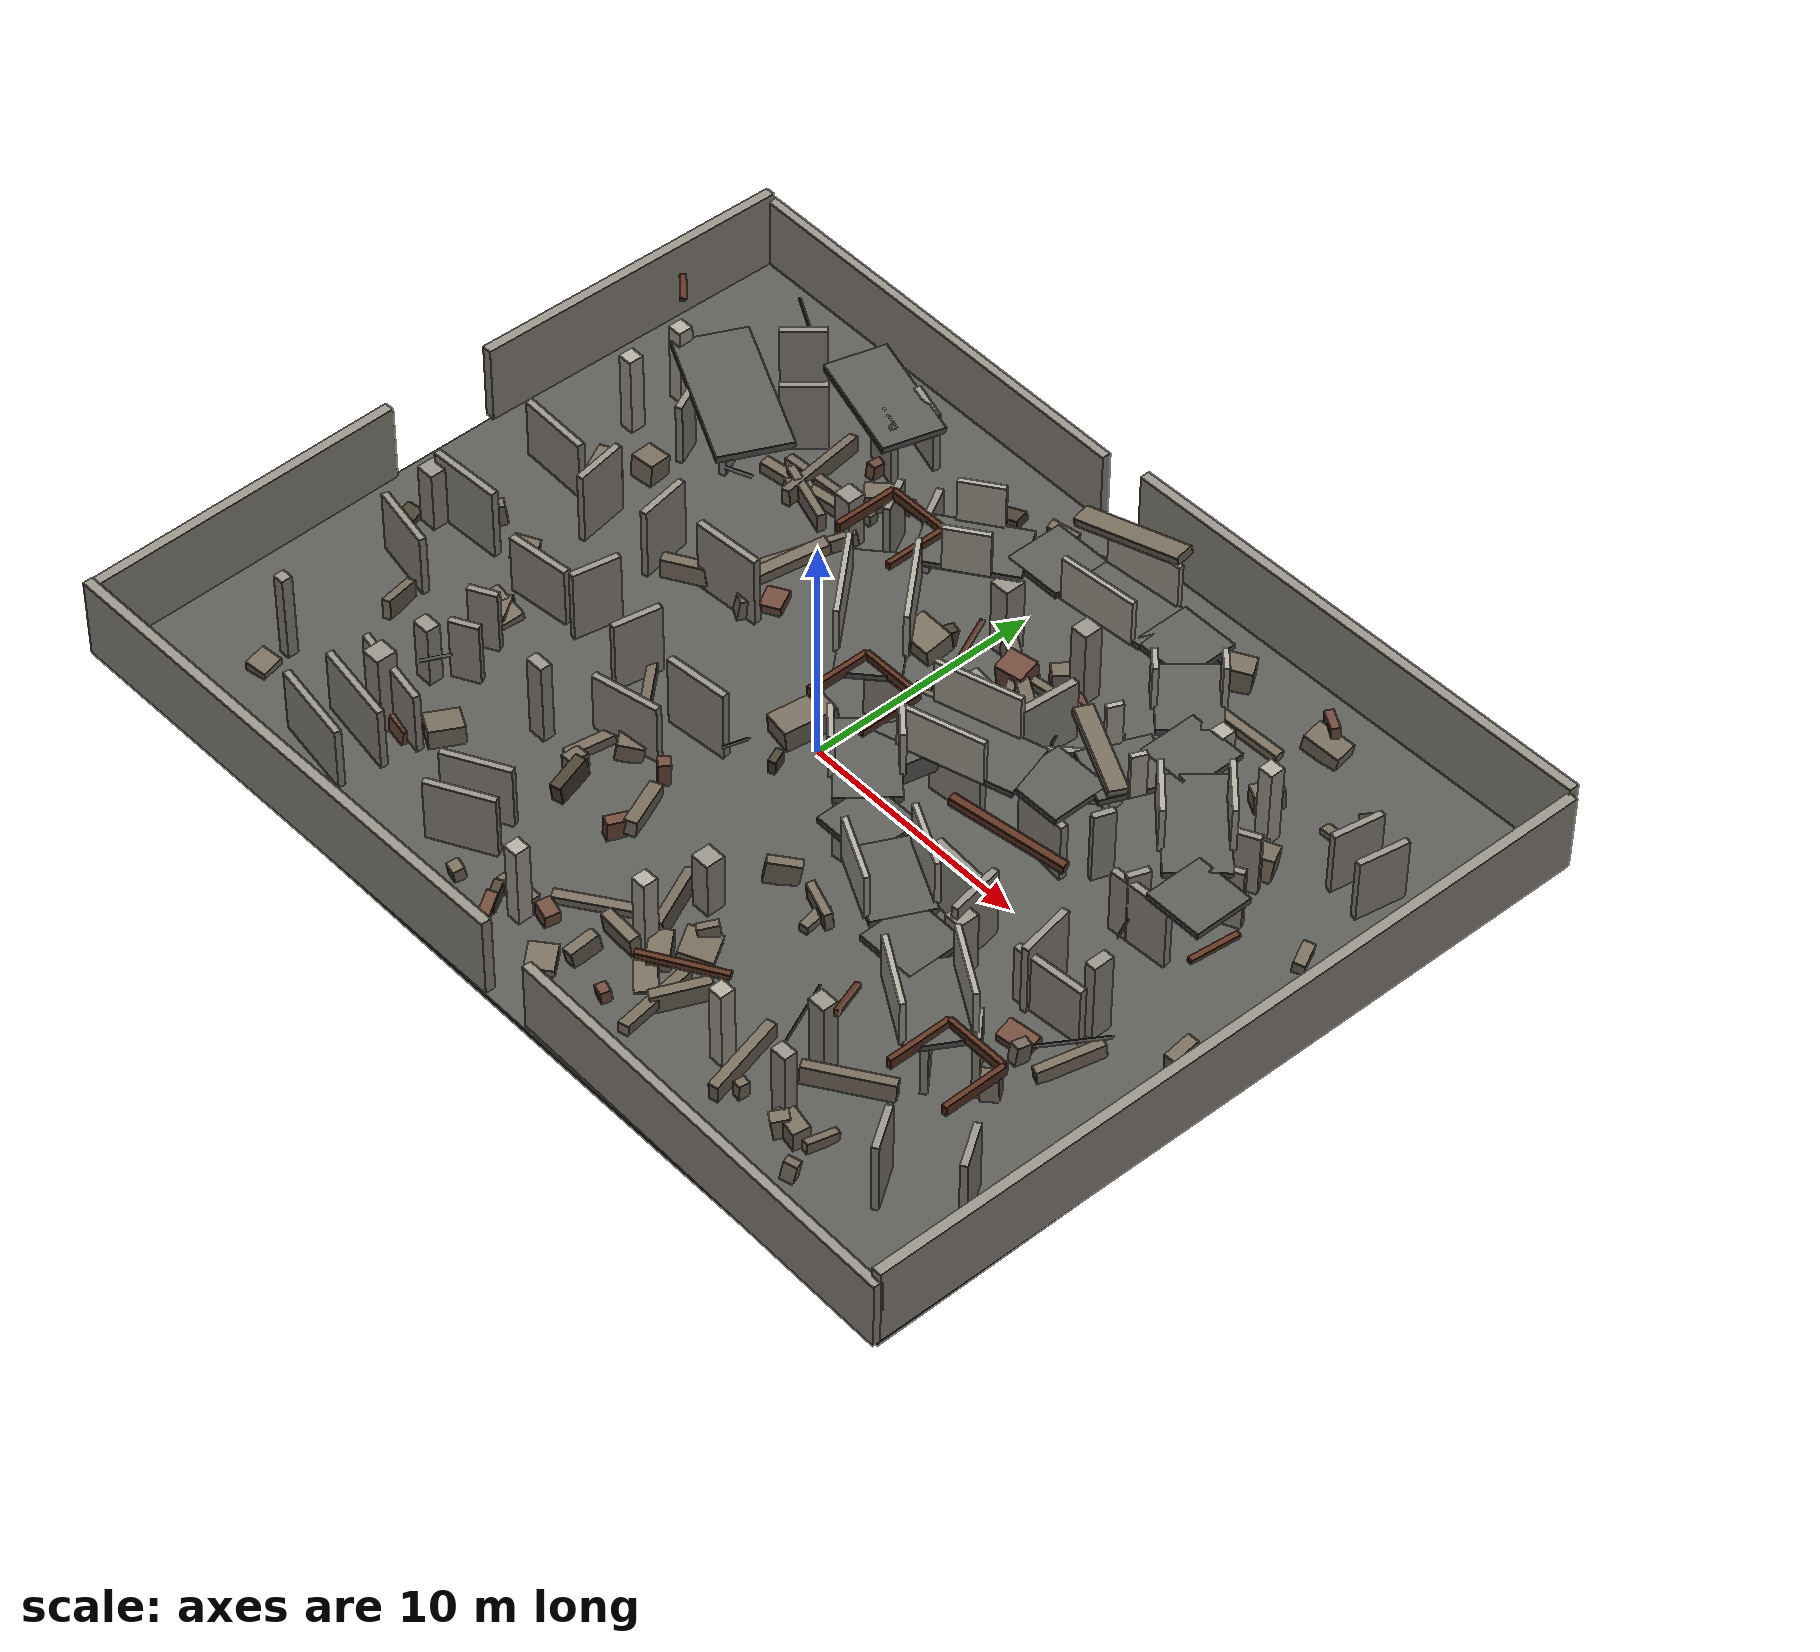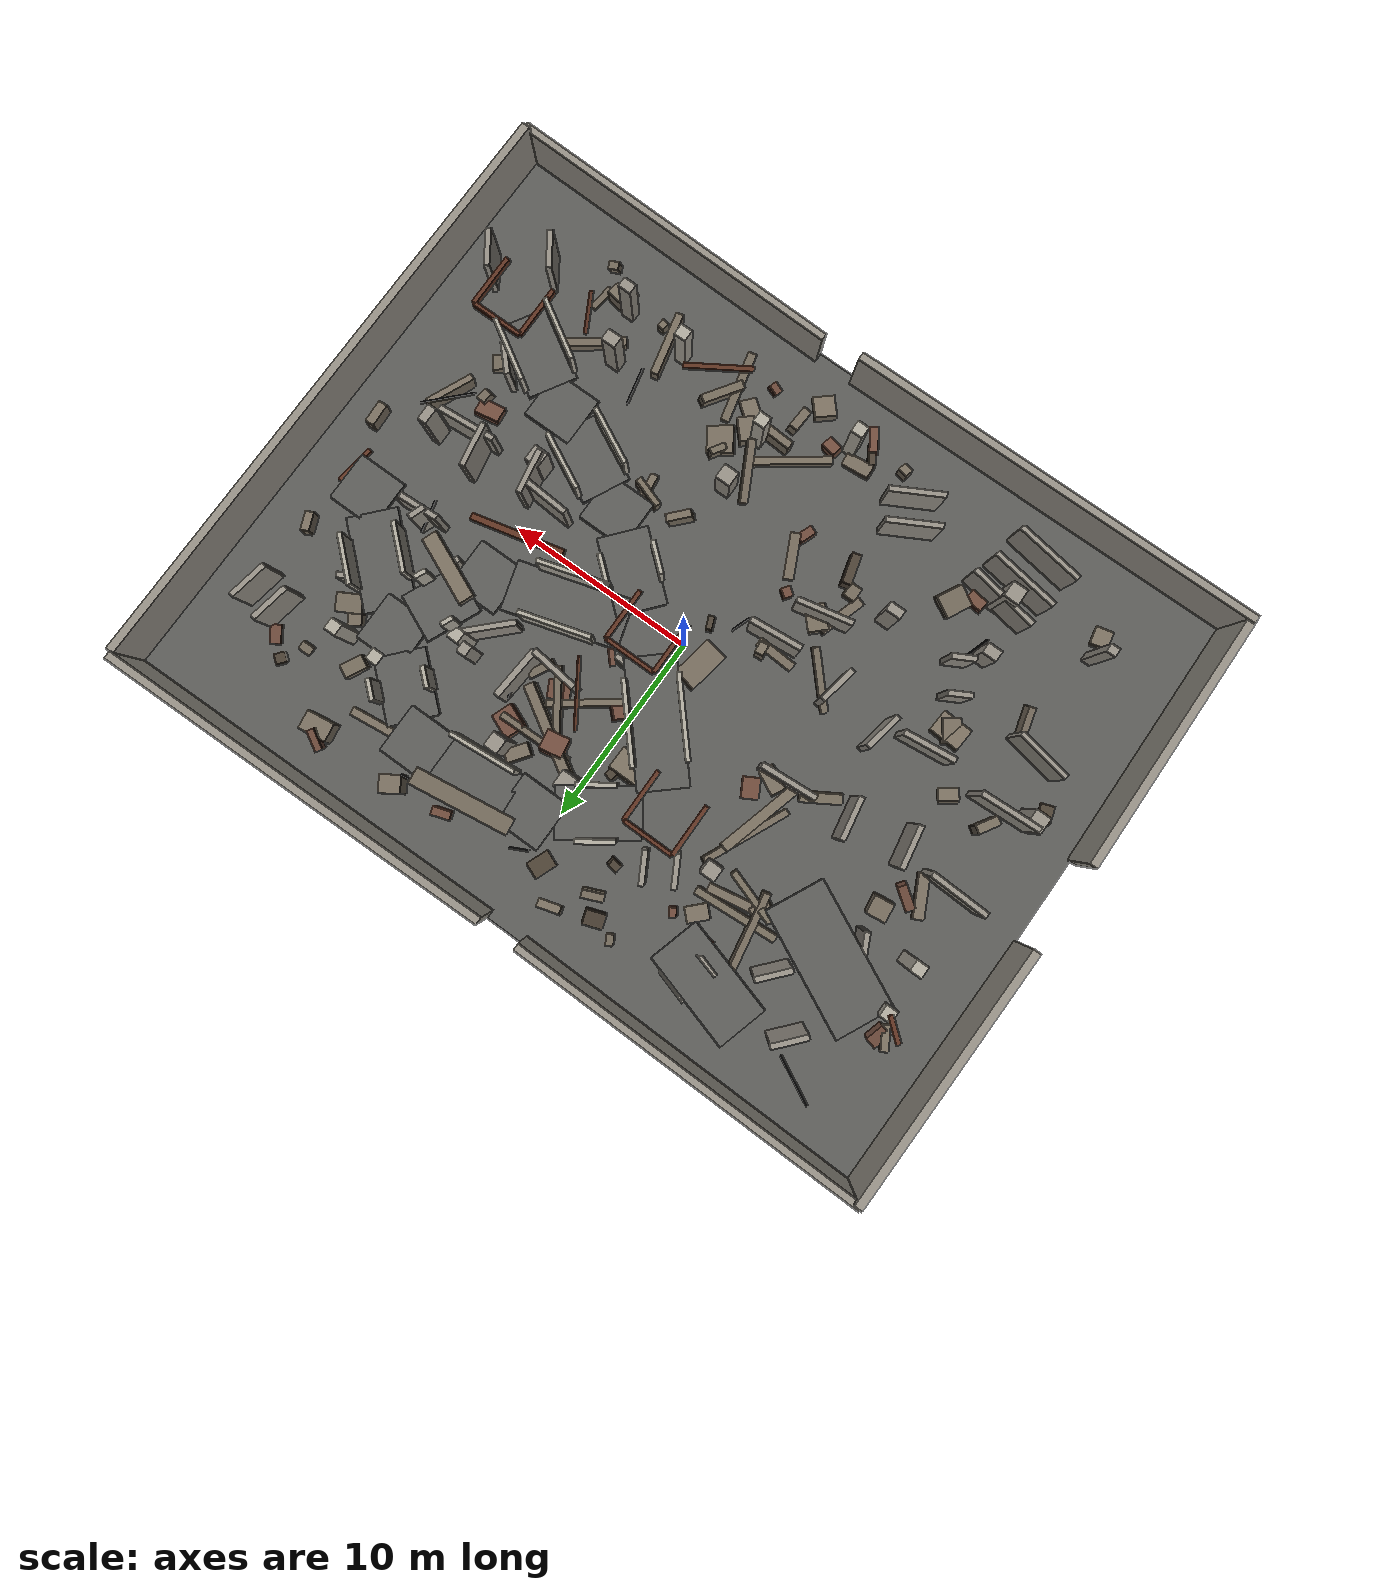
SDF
<?xml version="1.0" ?>
<sdf version="1.6">
  <world name="Ruins-Urban-01_complex_fog">
    <gravity>0 0 -9.81</gravity>
    <scene>
      <ambient>0.28 0.27 0.25 1</ambient>
      <background>0.25 0.25 0.26 1</background>
      <shadows>true</shadows>

      <fog><type>linear</type><color>0.30 0.29 0.27 1</color><start>7</start><end>34</end><density>0.008</density></fog>
    </scene>
    <physics name="ode_physics" type="ode">
      <max_step_size>0.004</max_step_size>
      <real_time_factor>1</real_time_factor>
      <real_time_update_rate>250</real_time_update_rate>
    </physics>
    <light name="ceiling_area_light" type="point">
      <pose>-11 0 6.8 0 0 0</pose>
      <diffuse>0.68 0.65 0.58 1</diffuse>
      <specular>0.05 0.05 0.05 1</specular>
      <attenuation><range>38</range><constant>0.7</constant><linear>0.02</linear><quadratic>0.002</quadratic></attenuation>
    </light>
    <light name="damaged_east_light" type="point">
      <pose>12 5 5.8 0 0 0</pose>
      <diffuse>0.42 0.48 0.50 1</diffuse>
      <specular>0.03 0.03 0.03 1</specular>
      <attenuation><range>25</range><constant>0.8</constant><linear>0.04</linear><quadratic>0.004</quadratic></attenuation>
    </light>
    <light name="lower_south_light" type="point">
      <pose>-5 -10 3.0 0 0 0</pose>
      <diffuse>0.38 0.31 0.25 1</diffuse>
      <specular>0.02 0.02 0.02 1</specular>
      <attenuation><range>19</range><constant>0.9</constant><linear>0.05</linear><quadratic>0.006</quadratic></attenuation>
    </light>
    <include>
      <uri>model://ruins_urban_01_complex</uri>
    </include>
  </world>
</sdf>
